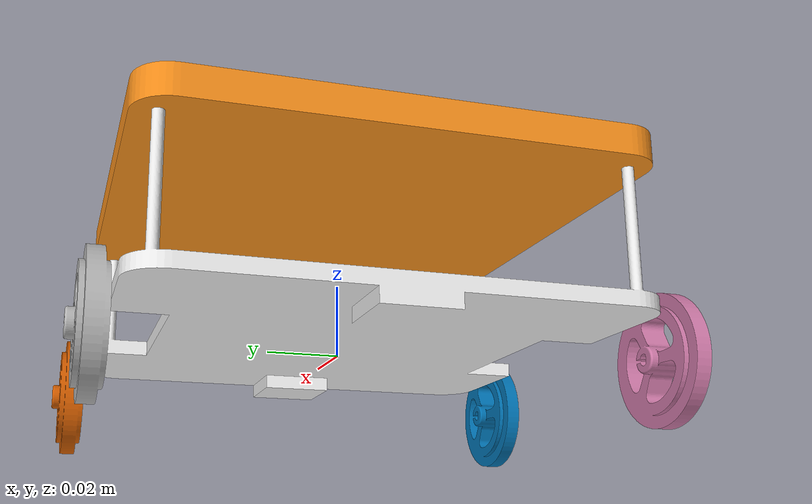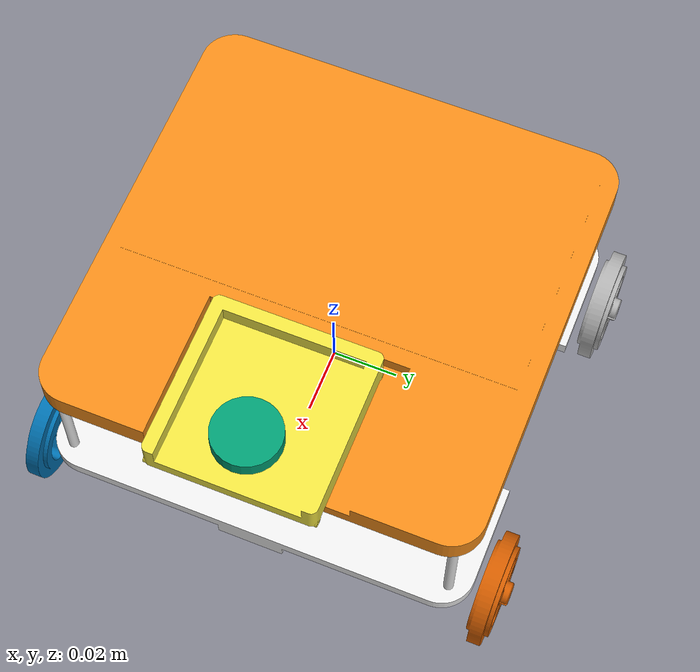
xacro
<?xml version="1.0"?>
<robot name="rover" xmlns:xacro="http://ros.org/wiki/xacro">

<link name="base_bot_link">
<inertial>
        <mass value="15"/>
        <origin xyz="0.0 0.0 0.0"/>
        <inertia
          ixx="0.01042" ixy="0.001177" ixz="-0.0008871"
          iyy="0.01045" iyz="0.0002226"
          izz="0.01817"/>
      </inertial>
    <visual>
        <geometry>
          <mesh filename="package://rover_description/meshes/stl/base.stl"/>
        </geometry>
      </visual>
      <collision>
        <geometry>
          <mesh filename="package://rover_description/meshes/stl/base.stl"/>
        </geometry>
      </collision>
</link>

<joint name="upper_plate_joint" type="fixed">
    <parent link="base_bot_link" />
    <child link="upper_plate"/>
    <origin xyz="0.0 0.0 0.04" rpy="0.0 0.0 0.0" />
</joint>

<link name="upper_plate">
<inertial>
        <mass value="0.3"/>
        <origin xyz="0.0 0.0 0.0"/>
        <inertia
          ixx="0.01042" ixy="0.001177" ixz="-0.0008871"
          iyy="0.01045" iyz="0.0002226"
          izz="0.01817"/>
      </inertial>
    <visual>
        <geometry>
          <mesh filename="package://rover_description/meshes/stl/upper_base_plate.stl"/>
        </geometry>
      </visual>
      <collision>
        <geometry>
          <mesh filename="package://rover_description/meshes/stl/upper_base_plate.stl"/>
        </geometry>
      </collision>
</link>

<joint name="laser_joint" type="fixed">
    <parent link="base_bot_link" />
    <child link="laser"/>
    <origin xyz="0.06 0.0 0.065" rpy="0.0 0.0 0.0" />
</joint>

<link name="laser">
<inertial>
        <mass value="0.3"/>
        <origin xyz="0.0 0.0 0.0"/>
        <inertia
          ixx="0.01042" ixy="0.001177" ixz="-0.0008871"
          iyy="0.01045" iyz="0.0002226"
          izz="0.01817"/>
      </inertial>
    <visual>
        <geometry>
         <cylinder length="0.005" radius="0.01"/>
        </geometry>
      </visual>
      <collision>
        <geometry>
           <cylinder length="0.005" radius="0.01"/>
        </geometry>
      </collision>
</link>

<joint name="tray_joint" type="fixed">
    <parent link="upper_plate" />
    <child link="tray"/>
    <origin xyz="0.07 -0.026 0.01" rpy="0.0 0.0 0.0" />
    <axis xyz="0 1 0" />
    <limit lower="-3.142" upper="3.142" effort="150.0" velocity="1.5"/>
</joint>

<link name="tray">
<inertial>
        <mass value="0.3"/>
        <origin xyz="0.0 0.0 0.0"/>
        <inertia
          ixx="0.01042" ixy="0.001177" ixz="-0.0008871"
          iyy="0.01045" iyz="0.0002226"
          izz="0.01817"/>
      </inertial>
    <visual>
        <geometry>
          <mesh filename="package://rover_description/meshes/stl/tray.stl"/>
        </geometry>
      </visual>
      <collision>
        <geometry>
          <mesh filename="package://rover_description/meshes/stl/tray.stl"/>
        </geometry>
      </collision>
</link>

<!-- CAster Integrated -->

<joint name="right_wheel_front_joint" type="continuous">
    <parent link="base_bot_link" />
    <child link="wheel_right_front"/>
    <origin xyz="0.05 -0.07 -0.007" rpy="0.0 0.0 0.0" />
    <axis xyz="0 1 0"/>
    <limit lower="-3.142" upper="3.142" effort="150.0" velocity="1.5"/>
</joint>

<link name="wheel_right_front">
<inertial>
        <mass value="0.3"/>
        <origin xyz="0.0 0.0 0.0"/>
        <inertia
          ixx="0.01042" ixy="0.001177" ixz="-0.0008871"
          iyy="0.01045" iyz="0.0002226"
          izz="0.01817"/>
      </inertial>
    <visual>
        <geometry>
          <mesh filename="package://rover_description/meshes/stl/wheel.stl"/>
        </geometry>
      </visual>
      <collision>
        <geometry>
          <mesh filename="package://rover_description/meshes/stl/wheel.stl"/>
        </geometry>
      </collision>
</link>

<joint name="left_wheel_front_joint" type="continuous">
    <parent link="base_bot_link" />
    <child link="wheel_left_front"/>
    <origin xyz="0.05 0.07 -0.007" rpy="0.0 0.0 0.0" />
    <axis xyz="0 1 0" />
    <limit lower="-3.142" upper="3.142" effort="150.0" velocity="1.5"/>
</joint>

<link name="wheel_left_front">
<inertial>
        <mass value="0.3"/>
        <origin xyz="0.0 0.0 0.0" rpy="0.0 0.0 3.142" />
        <inertia
          ixx="0.01042" ixy="0.001177" ixz="-0.0008871"
          iyy="0.01045" iyz="0.0002226"
          izz="0.01817"/>
      </inertial>
    <visual>
        <geometry>
          <mesh filename="package://rover_description/meshes/stl/wheel.stl"/>
        </geometry>
      </visual>
      <collision>
        <geometry>
          <mesh filename="package://rover_description/meshes/stl/wheel.stl"/>
        </geometry>
      </collision>
</link>

<!-- Wheels of the bot -->

<joint name="right_wheel_rear_joint" type="continuous">
    <parent link="base_bot_link" />
    <child link="wheel_right_rear"/>
    <origin xyz="-0.05 -0.07 -0.007" rpy="0.0 0.0 0.0" />
    <axis xyz="0 1 0" />
    <limit lower="-3.142" upper="3.142" effort="150.0" velocity="1.5"/>
</joint>

<link name="wheel_right_rear">
<inertial>
        <mass value="0.3"/>
        <origin xyz="0.0 0.0 0.0"/>
        <inertia
          ixx="0.01042" ixy="0.001177" ixz="-0.0008871"
          iyy="0.01045" iyz="0.0002226"
          izz="0.01817"/>
      </inertial>
    <visual>
        <geometry>
          <mesh filename="package://rover_description/meshes/stl/wheel.stl"/>
        </geometry>
      </visual>
      <collision>
        <geometry>
          <mesh filename="package://rover_description/meshes/stl/wheel.stl"/>
        </geometry>
      </collision>
</link>

<joint name="left_wheel_rear_joint" type="continuous">
    <parent link="base_bot_link" />
    <child link="wheel_left_rear"/>
    <origin xyz="-0.05 0.07 -0.007" rpy="0.0 0.0 0.0" />
    <axis xyz="0 1 0" />
    <limit lower="-3.142" upper="3.142" effort="150.0" velocity="1.5"/>
</joint>

<link name="wheel_left_rear">
<inertial>
        <mass value="0.3"/>
        <origin xyz="0.0 0.0 0.0" rpy="0.0 0.0 3.142" />
        <inertia
          ixx="0.01042" ixy="0.001177" ixz="-0.0008871"
          iyy="0.01045" iyz="0.0002226"
          izz="0.01817"/>
      </inertial>
    <visual>
        <geometry>
          <mesh filename="package://rover_description/meshes/stl/wheel.stl"/>
        </geometry>
      </visual>
      <collision>
        <geometry>
          <mesh filename="package://rover_description/meshes/stl/wheel.stl"/>
        </geometry>
      </collision>
</link>

<!-- GAZEBO -->

<gazebo>
    <plugin name="skid_steer_drive_controller" filename="libgazebo_ros_skid_steer_drive.so">
      <updateRate>60.0</updateRate>
      <leftFrontJoint>left_wheel_front_joint</leftFrontJoint>
      <rightFrontJoint>right_wheel_front_joint</rightFrontJoint>
      <leftRearJoint>left_wheel_rear_joint</leftRearJoint>
      <rightRearJoint>right_wheel_rear_joint</rightRearJoint>
      <wheelSeparation>0.140</wheelSeparation>
      <wheelDiameter>0.03</wheelDiameter>
      <robotBaseFrame>base_bot_link</robotBaseFrame>
      <torque>5</torque>
      <topicName>cmd_vel</topicName>

      <commandTopic>cmd_vel</commandTopic>
      <odometryTopic>odom</odometryTopic>
      <odometryFrame>odom</odometryFrame>

      <broadcastTF>true</broadcastTF>
   </plugin>
  </gazebo>

  <gazebo reference="laser">
    <sensor type="ray" name="head_rplidar_sensor">
      <pose>0 0 0 0 0 0</pose>
      <visualize>true</visualize>
      <update_rate>60</update_rate>
      <ray>
        <scan>
          <horizontal>
            <samples>720</samples>
            <resolution>1</resolution>
            <min_angle>-2.35619</min_angle>
            <max_angle>2.35619</max_angle>
          </horizontal>
        </scan>
        <range>
          <min>0.05</min>
          <max>5.0</max>
          <resolution>0.01</resolution>
        </range>
        <noise>
          <type>gaussian</type>
          <mean>0.0</mean>
          <stddev>0.01</stddev>
        </noise>
      </ray>
      <plugin name="gazebo_ros_head_rplidar_controller" filename="libgazebo_ros_laser.so">
        <topicName>/obito/laser/scan</topicName>
        <frameName>laser</frameName>
      </plugin>
    </sensor>
  </gazebo>

<gazebo reference="upper_plate">
    <self_collide>1</self_collide>
  </gazebo>
  <gazebo reference="tray">
    <self_collide>1</self_collide>
  </gazebo>
  <gazebo reference="wheel_right">
    <self_collide>1</self_collide>
  </gazebo>
  <gazebo reference="wheel_left">
    <self_collide>1</self_collide>
  </gazebo>

  <gazebo reference="upper_plate">
    <material>Gazebo/Orange</material>
  </gazebo>
    <gazebo reference="liwheel_rightnk1">
    <material>Gazebo/Orange</material>
  </gazebo>
    <gazebo reference="wheel_right">
    <material>Gazebo/Orange</material>
  </gazebo>
  <gazebo reference="wheel_left">
    <material>Gazebo/Orange</material>
  </gazebo>
    <gazebo reference="base_bot_link">
    <material>Gazebo/White</material>
  </gazebo>

</robot>
